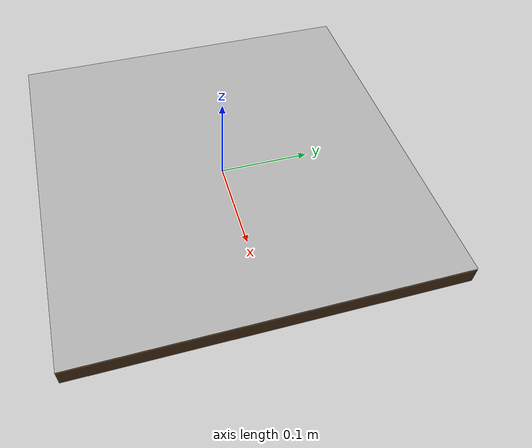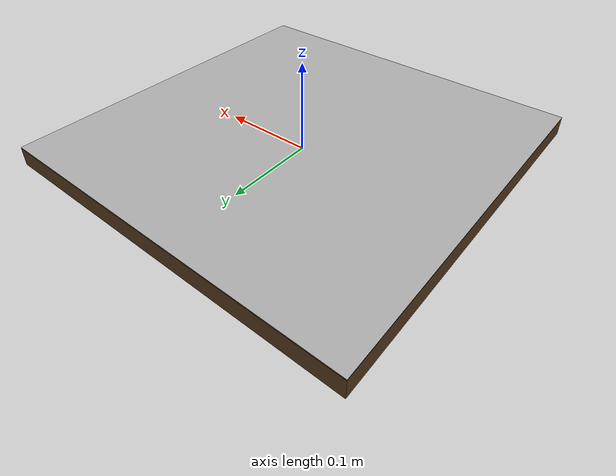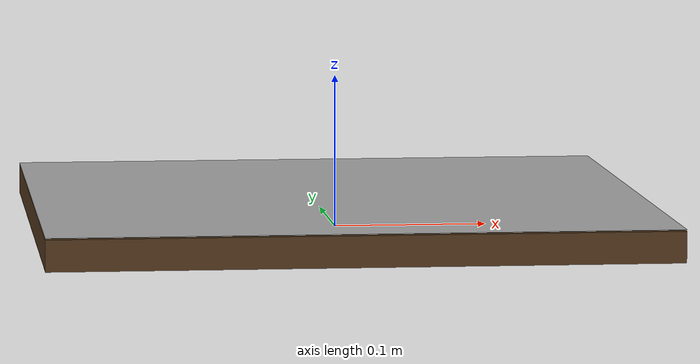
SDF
<?xml version="1.0"?>
<sdf version="1.6">
  <model name="chessboard">
    <static>true</static>

    <!-- Base -->
    <link name="base">
      <pose>0 0 0.01 0 0 0</pose>

      <collision name="collision">
        <geometry>
          <box>
            <size>0.4 0.4 0.02</size>
          </box>
        </geometry>
      </collision>

      <visual name="visual">
        <geometry>
          <box>
            <size>0.4 0.4 0.02</size>
          </box>
        </geometry>
        <material>
          <ambient>0.3 0.2 0.1 1</ambient>
        </material>
      </visual>
    </link>

    <!-- Squares -->
    <!-- 64 visual only -->
    <!-- Example row -->
    <link name="squares">
      <pose>0 0 0.021 0 0 0</pose>
      <visual name="tiles">
        <geometry>
          <plane>
            <size>0.4 0.4</size>
            <normal>0 0 1</normal>
          </plane>
        </geometry>
        <material>
          <script>
            <uri>file://media/materials/scripts/gazebo.material</uri>
            <name>Gazebo/ChessBoard</name>
          </script>
        </material>
      </visual>
    </link>
  </model>
</sdf>
